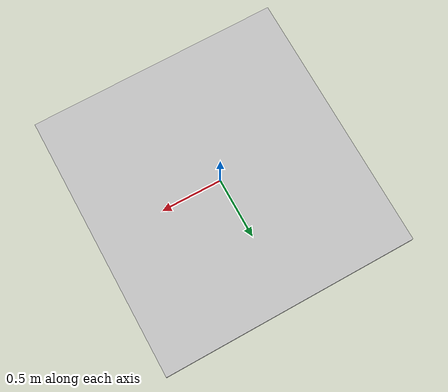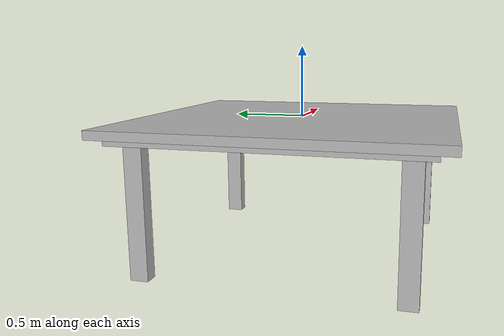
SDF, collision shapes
<?xml version="1.0"?>
<sdf version="1.7">
  <model name="table">
    <link name="table_body">
      <visual name="table_visual">
        <geometry>
          <mesh>
            <uri>table_extra_wide.obj</uri>
          </mesh>
        </geometry>
      </visual>
      <collision name="table_top">
        <pose> 0 0 -0.03 0 0 0</pose>
        <geometry>
          <box>
            <size>2.1 2.2 0.06</size>
          </box>
        </geometry>
      </collision>
      <collision name="table_top_2">
        <pose> 0 0 -0.08 0 0 0</pose>
        <geometry>
          <box>
            <size>2.0 2.0 0.04</size>
          </box>
        </geometry>
      </collision>
      <collision name="leg_1">
        <pose> 0.855 0.8625 -0.55 0 0 0</pose>
        <geometry>
          <box>
            <size>0.09 0.125 0.9</size>
          </box>
        </geometry>
      </collision>
      <collision name="leg_2">
        <pose> -0.855 0.8625 -0.55 0 0 0</pose>
        <geometry>
          <box>
            <size>0.09 0.125 0.9</size>
          </box>
        </geometry>
      </collision>
      <collision name="leg_3">
        <pose> -0.855 -0.857 -0.55 0 0 0</pose>
        <geometry>
          <box>
            <size>0.09 0.125 0.9</size>
          </box>
        </geometry>
      </collision>
      <collision name="leg_4">
        <pose> 0.855 -0.857 -0.55 0 0 0</pose>
        <geometry>
          <box>
            <size>0.09 0.125 0.9</size>
          </box>
        </geometry>
      </collision>
    </link>
  </model>
</sdf>
